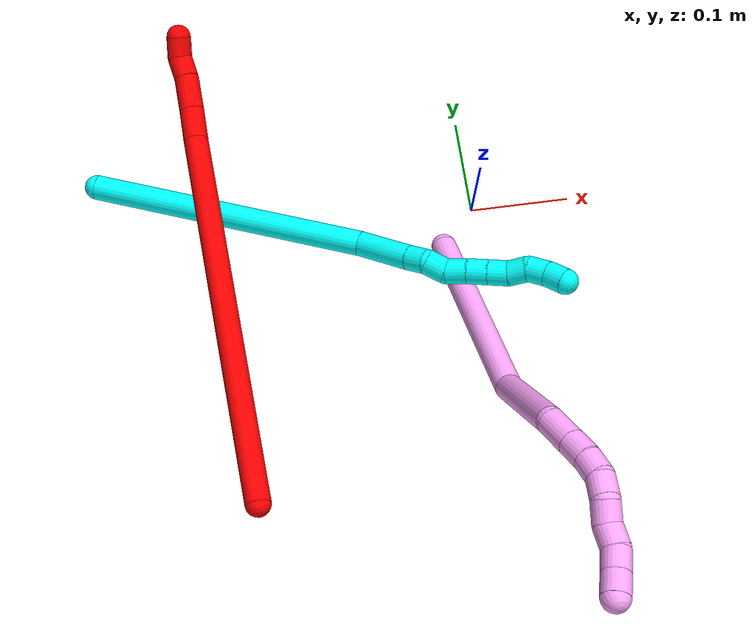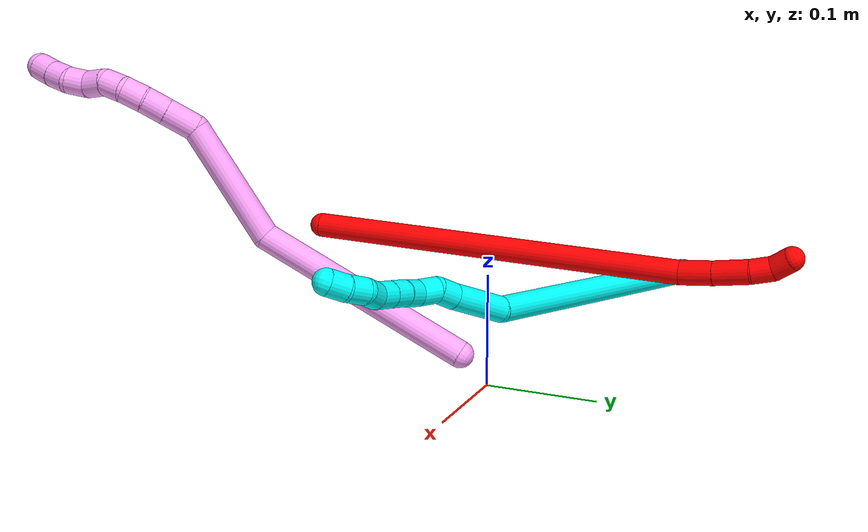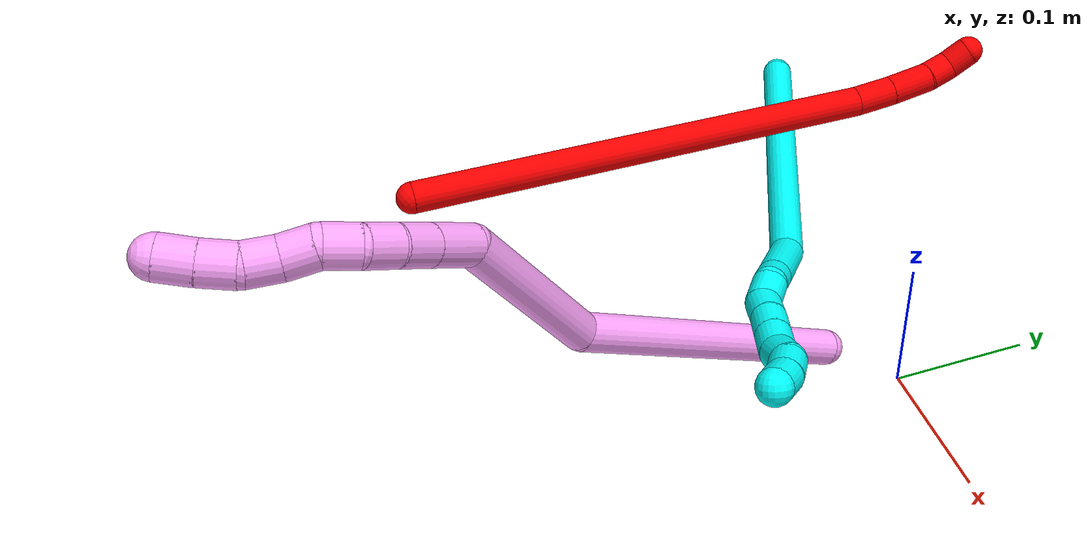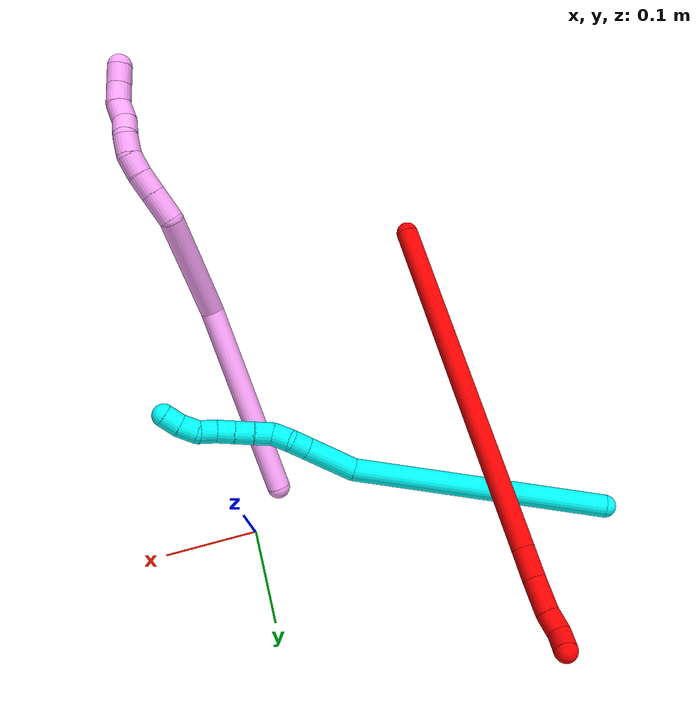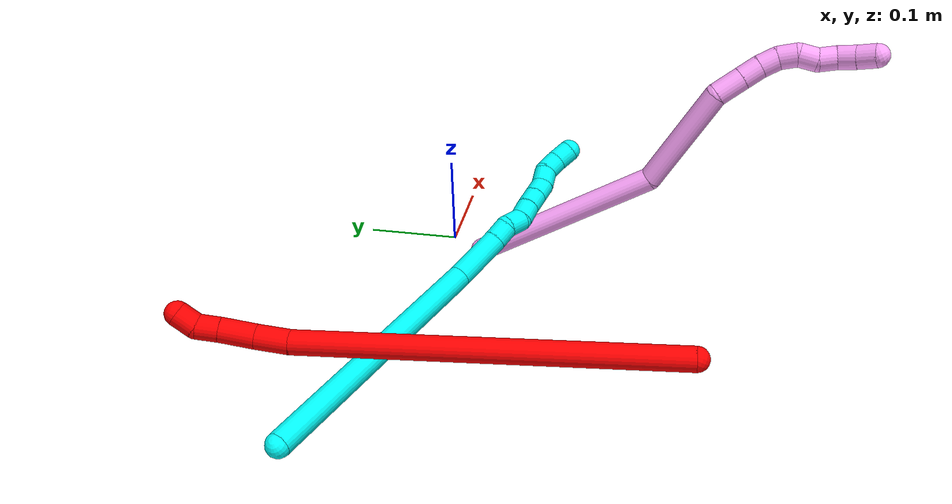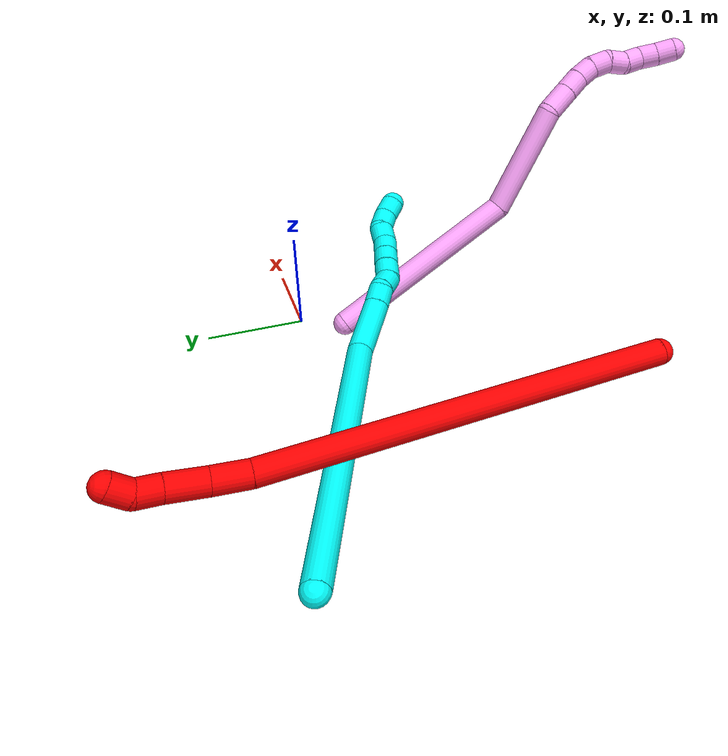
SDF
<sdf version="1.7">
 <world name="default">
  <model name="2">
   <static>0</static>
   <link name="2">
    <collision name="collision-cylinder-e_1_1_4">
     <pose>-0.051557 0.086936 0.164461 -0.486272 -0.270364 0.067448</pose>
     <geometry><cylinder><radius>0.0125</radius><length>0.386075</length></cylinder></geometry>
     <surface>
      <friction><ode><mu>1.16</mu><mu2>1.16</mu2><slip1>0</slip1><slip2>0</slip2></ode></friction>
      <contact><ode><kp>1e+06</kp><kd>1</kd><max_vel>0</max_vel><min_depth>0.001</min_depth></ode></contact>
     </surface>
    </collision>
    <visual name="visual-cylinder-e_1_1_4">
     <pose>-0.051557 0.086936 0.164461 -0.486272 -0.270364 0.067448</pose>
     <geometry><cylinder><radius>0.0125</radius><length>0.386075</length></cylinder></geometry>
     <material><ambient>1 0 0 1</ambient></material>
    </visual>
    <collision name="collision-cylinder-e_2_4_5">
     <pose>-0.105876 0.180507 0.344051 -0.413342 -0.165694 0.034816</pose>
     <geometry><cylinder><radius>0.0125</radius><length>0.033499</length></cylinder></geometry>
     <surface>
      <friction><ode><mu>1.16</mu><mu2>1.16</mu2><slip1>0</slip1><slip2>0</slip2></ode></friction>
      <contact><ode><kp>1e+06</kp><kd>1</kd><max_vel>0</max_vel><min_depth>0.001</min_depth></ode></contact>
     </surface>
    </collision>
    <visual name="visual-cylinder-e_2_4_5">
     <pose>-0.105876 0.180507 0.344051 -0.413342 -0.165694 0.034816</pose>
     <geometry><cylinder><radius>0.0125</radius><length>0.033499</length></cylinder></geometry>
     <material><ambient>1 0 0 1</ambient></material>
    </visual>
    <collision name="collision-cylinder-e_3_5_6">
     <pose>-0.111198 0.193486 0.375998 -0.360679 -0.141418 0.025825</pose>
     <geometry><cylinder><radius>0.0125</radius><length>0.036312</length></cylinder></geometry>
     <surface>
      <friction><ode><mu>1.16</mu><mu2>1.16</mu2><slip1>0</slip1><slip2>0</slip2></ode></friction>
      <contact><ode><kp>1e+06</kp><kd>1</kd><max_vel>0</max_vel><min_depth>0.001</min_depth></ode></contact>
     </surface>
    </collision>
    <visual name="visual-cylinder-e_3_5_6">
     <pose>-0.111198 0.193486 0.375998 -0.360679 -0.141418 0.025825</pose>
     <geometry><cylinder><radius>0.0125</radius><length>0.036312</length></cylinder></geometry>
     <material><ambient>1 0 0 1</ambient></material>
    </visual>
    <collision name="collision-cylinder-e_4_6_7">
     <pose>-0.116101 0.202076 0.403603 -0.205349 -0.209598 0.021675</pose>
     <geometry><cylinder><radius>0.0125</radius><length>0.02253</length></cylinder></geometry>
     <surface>
      <friction><ode><mu>1.16</mu><mu2>1.16</mu2><slip1>0</slip1><slip2>0</slip2></ode></friction>
      <contact><ode><kp>1e+06</kp><kd>1</kd><max_vel>0</max_vel><min_depth>0.001</min_depth></ode></contact>
     </surface>
    </collision>
    <visual name="visual-cylinder-e_4_6_7">
     <pose>-0.116101 0.202076 0.403603 -0.205349 -0.209598 0.021675</pose>
     <geometry><cylinder><radius>0.0125</radius><length>0.02253</length></cylinder></geometry>
     <material><ambient>1 0 0 1</ambient></material>
    </visual>
    <collision name="collision-cylinder-e_5_7_2">
     <pose>-0.115747 0.205373 0.424787 -0.100648 0.252633 -0.012792</pose>
     <geometry><cylinder><radius>0.0125</radius><length>0.021584</length></cylinder></geometry>
     <surface>
      <friction><ode><mu>1.16</mu><mu2>1.16</mu2><slip1>0</slip1><slip2>0</slip2></ode></friction>
      <contact><ode><kp>1e+06</kp><kd>1</kd><max_vel>0</max_vel><min_depth>0.001</min_depth></ode></contact>
     </surface>
    </collision>
    <visual name="visual-cylinder-e_5_7_2">
     <pose>-0.115747 0.205373 0.424787 -0.100648 0.252633 -0.012792</pose>
     <geometry><cylinder><radius>0.0125</radius><length>0.021584</length></cylinder></geometry>
     <material><ambient>1 0 0 1</ambient></material>
    </visual>
    <collision name="collision-sphere-2">
     <pose>-0.11305 0.206423 0.435184 0 -0 0</pose>
     <geometry><sphere><radius>0.0125</radius></sphere></geometry>
     <surface>
      <friction><ode><mu>1.16</mu><mu2>1.16</mu2><slip1>0</slip1><slip2>0</slip2></ode></friction>
      <contact><ode><kp>1e+06</kp><kd>1</kd><max_vel>0</max_vel><min_depth>0.001</min_depth></ode></contact>
     </surface>
    </collision>
    <visual name="visual-sphere-2">
     <pose>-0.11305 0.206423 0.435184 0 -0 0</pose>
     <geometry><sphere><radius>0.0125</radius></sphere></geometry>
     <material><ambient>1 0 0 1</ambient></material>
    </visual>
    <collision name="collision-sphere-7">
     <pose>-0.118445 0.204323 0.414391 0 -0 0</pose>
     <geometry><sphere><radius>0.0125</radius></sphere></geometry>
     <surface>
      <friction><ode><mu>1.16</mu><mu2>1.16</mu2><slip1>0</slip1><slip2>0</slip2></ode></friction>
      <contact><ode><kp>1e+06</kp><kd>1</kd><max_vel>0</max_vel><min_depth>0.001</min_depth></ode></contact>
     </surface>
    </collision>
    <visual name="visual-sphere-7">
     <pose>-0.118445 0.204323 0.414391 0 -0 0</pose>
     <geometry><sphere><radius>0.0125</radius></sphere></geometry>
     <material><ambient>1 0 0 1</ambient></material>
    </visual>
    <collision name="collision-sphere-6">
     <pose>-0.113757 0.199829 0.392816 0 -0 0</pose>
     <geometry><sphere><radius>0.0125</radius></sphere></geometry>
     <surface>
      <friction><ode><mu>1.16</mu><mu2>1.16</mu2><slip1>0</slip1><slip2>0</slip2></ode></friction>
      <contact><ode><kp>1e+06</kp><kd>1</kd><max_vel>0</max_vel><min_depth>0.001</min_depth></ode></contact>
     </surface>
    </collision>
    <visual name="visual-sphere-6">
     <pose>-0.113757 0.199829 0.392816 0 -0 0</pose>
     <geometry><sphere><radius>0.0125</radius></sphere></geometry>
     <material><ambient>1 0 0 1</ambient></material>
    </visual>
    <collision name="collision-sphere-5">
     <pose>-0.108639 0.187143 0.35918 0 -0 0</pose>
     <geometry><sphere><radius>0.0125</radius></sphere></geometry>
     <surface>
      <friction><ode><mu>1.16</mu><mu2>1.16</mu2><slip1>0</slip1><slip2>0</slip2></ode></friction>
      <contact><ode><kp>1e+06</kp><kd>1</kd><max_vel>0</max_vel><min_depth>0.001</min_depth></ode></contact>
     </surface>
    </collision>
    <visual name="visual-sphere-5">
     <pose>-0.108639 0.187143 0.35918 0 -0 0</pose>
     <geometry><sphere><radius>0.0125</radius></sphere></geometry>
     <material><ambient>1 0 0 1</ambient></material>
    </visual>
    <collision name="collision-sphere-1">
     <geometry><sphere><radius>0.0125</radius></sphere></geometry>
     <surface>
      <friction><ode><mu>1.16</mu><mu2>1.16</mu2><slip1>0</slip1><slip2>0</slip2></ode></friction>
      <contact><ode><kp>1e+06</kp><kd>1</kd><max_vel>0</max_vel><min_depth>0.001</min_depth></ode></contact>
     </surface>
    </collision>
    <visual name="visual-sphere-1">
     <geometry><sphere><radius>0.0125</radius></sphere></geometry>
     <material><ambient>1 0 0 1</ambient></material>
    </visual>
    <collision name="collision-sphere-4">
     <pose>-0.103114 0.173871 0.328923 0 -0 0</pose>
     <geometry><sphere><radius>0.0125</radius></sphere></geometry>
     <surface>
      <friction><ode><mu>1.16</mu><mu2>1.16</mu2><slip1>0</slip1><slip2>0</slip2></ode></friction>
      <contact><ode><kp>1e+06</kp><kd>1</kd><max_vel>0</max_vel><min_depth>0.001</min_depth></ode></contact>
     </surface>
    </collision>
    <visual name="visual-sphere-4">
     <pose>-0.103114 0.173871 0.328923 0 -0 0</pose>
     <geometry><sphere><radius>0.0125</radius></sphere></geometry>
     <material><ambient>1 0 0 1</ambient></material>
    </visual>
    <inertial>
     <pose>-0.065207 0.111244 0.21387 0 -0 0</pose>
     <mass>0.5</mass>
     <inertia>
      <ixx>0.004942</ixx>
      <ixy>0</ixy>
      <ixz>0</ixz>
      <iyy>0.004625</iyy>
      <iyz>0</iyz>
      <izz>-0.00085</izz>
     </inertia>
    </inertial>
   </link>
   <pose>-0.252344 -0.288522 0.05514 -0.892855 -0.711165 -0.275435</pose>
  </model>
  <model name="3">
   <static>0</static>
   <link name="3">
    <collision name="collision-cylinder-e_1_1_4">
     <pose>0.118021 -0.041114 0.063446 0.574982 1.00107 0.320697</pose>
     <geometry><cylinder><radius>0.0125</radius><length>0.280319</length></cylinder></geometry>
     <surface>
      <friction><ode><mu>1.16</mu><mu2>1.16</mu2><slip1>0</slip1><slip2>0</slip2></ode></friction>
      <contact><ode><kp>1e+06</kp><kd>1</kd><max_vel>0</max_vel><min_depth>0.001</min_depth></ode></contact>
     </surface>
    </collision>
    <visual name="visual-cylinder-e_1_1_4">
     <pose>0.118021 -0.041114 0.063446 0.574982 1.00107 0.320697</pose>
     <geometry><cylinder><radius>0.0125</radius><length>0.280319</length></cylinder></geometry>
     <material><ambient>0.003922 1 0.996078 1</ambient></material>
    </visual>
    <collision name="collision-cylinder-e_2_4_5">
     <pose>0.26429 -0.086446 0.130622 0.846678 1.37404 0.708113</pose>
     <geometry><cylinder><radius>0.0125</radius><length>0.057608</length></cylinder></geometry>
     <surface>
      <friction><ode><mu>1.16</mu><mu2>1.16</mu2><slip1>0</slip1><slip2>0</slip2></ode></friction>
      <contact><ode><kp>1e+06</kp><kd>1</kd><max_vel>0</max_vel><min_depth>0.001</min_depth></ode></contact>
     </surface>
    </collision>
    <visual name="visual-cylinder-e_2_4_5">
     <pose>0.26429 -0.086446 0.130622 0.846678 1.37404 0.708113</pose>
     <geometry><cylinder><radius>0.0125</radius><length>0.057608</length></cylinder></geometry>
     <material><ambient>0.003922 1 0.996078 1</ambient></material>
    </visual>
    <collision name="collision-cylinder-e_3_5_6">
     <pose>0.302381 -0.092434 0.134879 1.28163 1.38535 1.10841</pose>
     <geometry><cylinder><radius>0.0125</radius><length>0.020029</length></cylinder></geometry>
     <surface>
      <friction><ode><mu>1.16</mu><mu2>1.16</mu2><slip1>0</slip1><slip2>0</slip2></ode></friction>
      <contact><ode><kp>1e+06</kp><kd>1</kd><max_vel>0</max_vel><min_depth>0.001</min_depth></ode></contact>
     </surface>
    </collision>
    <visual name="visual-cylinder-e_3_5_6">
     <pose>0.302381 -0.092434 0.134879 1.28163 1.38535 1.10841</pose>
     <geometry><cylinder><radius>0.0125</radius><length>0.020029</length></cylinder></geometry>
     <material><ambient>0.003922 1 0.996078 1</ambient></material>
    </visual>
    <collision name="collision-cylinder-e_4_6_7">
     <pose>0.321502 -0.094699 0.140538 0.096225 1.06351 0.056636</pose>
     <geometry><cylinder><radius>0.0125</radius><length>0.021229</length></cylinder></geometry>
     <surface>
      <friction><ode><mu>1.16</mu><mu2>1.16</mu2><slip1>0</slip1><slip2>0</slip2></ode></friction>
      <contact><ode><kp>1e+06</kp><kd>1</kd><max_vel>0</max_vel><min_depth>0.001</min_depth></ode></contact>
     </surface>
    </collision>
    <visual name="visual-cylinder-e_4_6_7">
     <pose>0.321502 -0.094699 0.140538 0.096225 1.06351 0.056636</pose>
     <geometry><cylinder><radius>0.0125</radius><length>0.021229</length></cylinder></geometry>
     <material><ambient>0.003922 1 0.996078 1</ambient></material>
    </visual>
    <collision name="collision-cylinder-e_5_7_8">
     <pose>0.339341 -0.100026 0.14869 1.01225 0.983626 0.577291</pose>
     <geometry><cylinder><radius>0.0125</radius><length>0.020567</length></cylinder></geometry>
     <surface>
      <friction><ode><mu>1.16</mu><mu2>1.16</mu2><slip1>0</slip1><slip2>0</slip2></ode></friction>
      <contact><ode><kp>1e+06</kp><kd>1</kd><max_vel>0</max_vel><min_depth>0.001</min_depth></ode></contact>
     </surface>
    </collision>
    <visual name="visual-cylinder-e_5_7_8">
     <pose>0.339341 -0.100026 0.14869 1.01225 0.983626 0.577291</pose>
     <geometry><cylinder><radius>0.0125</radius><length>0.020567</length></cylinder></geometry>
     <material><ambient>0.003922 1 0.996078 1</ambient></material>
    </visual>
    <collision name="collision-cylinder-e_6_8_9">
     <pose>0.356292 -0.109171 0.155315 0.874552 0.980395 0.488931</pose>
     <geometry><cylinder><radius>0.0125</radius><length>0.020198</length></cylinder></geometry>
     <surface>
      <friction><ode><mu>1.16</mu><mu2>1.16</mu2><slip1>0</slip1><slip2>0</slip2></ode></friction>
      <contact><ode><kp>1e+06</kp><kd>1</kd><max_vel>0</max_vel><min_depth>0.001</min_depth></ode></contact>
     </surface>
    </collision>
    <visual name="visual-cylinder-e_6_8_9">
     <pose>0.356292 -0.109171 0.155315 0.874552 0.980395 0.488931</pose>
     <geometry><cylinder><radius>0.0125</radius><length>0.020198</length></cylinder></geometry>
     <material><ambient>0.003922 1 0.996078 1</ambient></material>
    </visual>
    <collision name="collision-cylinder-e_7_9_10">
     <pose>0.373019 -0.117753 0.162473 0.876744 0.983297 0.491919</pose>
     <geometry><cylinder><radius>0.0125</radius><length>0.020034</length></cylinder></geometry>
     <surface>
      <friction><ode><mu>1.16</mu><mu2>1.16</mu2><slip1>0</slip1><slip2>0</slip2></ode></friction>
      <contact><ode><kp>1e+06</kp><kd>1</kd><max_vel>0</max_vel><min_depth>0.001</min_depth></ode></contact>
     </surface>
    </collision>
    <visual name="visual-cylinder-e_7_9_10">
     <pose>0.373019 -0.117753 0.162473 0.876744 0.983297 0.491919</pose>
     <geometry><cylinder><radius>0.0125</radius><length>0.020034</length></cylinder></geometry>
     <material><ambient>0.003922 1 0.996078 1</ambient></material>
    </visual>
    <collision name="collision-cylinder-e_8_10_11">
     <pose>0.389334 -0.128029 0.166641 1.46855 0.922746 0.843642</pose>
     <geometry><cylinder><radius>0.0125</radius><length>0.020012</length></cylinder></geometry>
     <surface>
      <friction><ode><mu>1.16</mu><mu2>1.16</mu2><slip1>0</slip1><slip2>0</slip2></ode></friction>
      <contact><ode><kp>1e+06</kp><kd>1</kd><max_vel>0</max_vel><min_depth>0.001</min_depth></ode></contact>
     </surface>
    </collision>
    <visual name="visual-cylinder-e_8_10_11">
     <pose>0.389334 -0.128029 0.166641 1.46855 0.922746 0.843642</pose>
     <geometry><cylinder><radius>0.0125</radius><length>0.020012</length></cylinder></geometry>
     <material><ambient>0.003922 1 0.996078 1</ambient></material>
    </visual>
    <collision name="collision-cylinder-e_9_11_12">
     <pose>0.406888 -0.135897 0.169461 0.700994 1.27828 0.530609</pose>
     <geometry><cylinder><radius>0.0125</radius><length>0.020002</length></cylinder></geometry>
     <surface>
      <friction><ode><mu>1.16</mu><mu2>1.16</mu2><slip1>0</slip1><slip2>0</slip2></ode></friction>
      <contact><ode><kp>1e+06</kp><kd>1</kd><max_vel>0</max_vel><min_depth>0.001</min_depth></ode></contact>
     </surface>
    </collision>
    <visual name="visual-cylinder-e_9_11_12">
     <pose>0.406888 -0.135897 0.169461 0.700994 1.27828 0.530609</pose>
     <geometry><cylinder><radius>0.0125</radius><length>0.020002</length></cylinder></geometry>
     <material><ambient>0.003922 1 0.996078 1</ambient></material>
    </visual>
    <collision name="collision-cylinder-e_10_12_2">
     <pose>0.426429 -0.137824 0.172507 0.079228 1.48622 0.072802</pose>
     <geometry><cylinder><radius>0.0125</radius><length>0.02</length></cylinder></geometry>
     <surface>
      <friction><ode><mu>1.16</mu><mu2>1.16</mu2><slip1>0</slip1><slip2>0</slip2></ode></friction>
      <contact><ode><kp>1e+06</kp><kd>1</kd><max_vel>0</max_vel><min_depth>0.001</min_depth></ode></contact>
     </surface>
    </collision>
    <visual name="visual-cylinder-e_10_12_2">
     <pose>0.426429 -0.137824 0.172507 0.079228 1.48622 0.072802</pose>
     <geometry><cylinder><radius>0.0125</radius><length>0.02</length></cylinder></geometry>
     <material><ambient>0.003922 1 0.996078 1</ambient></material>
    </visual>
    <collision name="collision-sphere-2">
     <pose>0.436393 -0.137891 0.173349 0 -0 0</pose>
     <geometry><sphere><radius>0.0125</radius></sphere></geometry>
     <surface>
      <friction><ode><mu>1.16</mu><mu2>1.16</mu2><slip1>0</slip1><slip2>0</slip2></ode></friction>
      <contact><ode><kp>1e+06</kp><kd>1</kd><max_vel>0</max_vel><min_depth>0.001</min_depth></ode></contact>
     </surface>
    </collision>
    <visual name="visual-sphere-2">
     <pose>0.436393 -0.137891 0.173349 0 -0 0</pose>
     <geometry><sphere><radius>0.0125</radius></sphere></geometry>
     <material><ambient>0.003922 1 0.996078 1</ambient></material>
    </visual>
    <collision name="collision-sphere-12">
     <pose>0.416464 -0.137757 0.171665 0 -0 0</pose>
     <geometry><sphere><radius>0.0125</radius></sphere></geometry>
     <surface>
      <friction><ode><mu>1.16</mu><mu2>1.16</mu2><slip1>0</slip1><slip2>0</slip2></ode></friction>
      <contact><ode><kp>1e+06</kp><kd>1</kd><max_vel>0</max_vel><min_depth>0.001</min_depth></ode></contact>
     </surface>
    </collision>
    <visual name="visual-sphere-12">
     <pose>0.416464 -0.137757 0.171665 0 -0 0</pose>
     <geometry><sphere><radius>0.0125</radius></sphere></geometry>
     <material><ambient>0.003922 1 0.996078 1</ambient></material>
    </visual>
    <collision name="collision-sphere-11">
     <pose>0.397311 -0.134037 0.167257 0 -0 0</pose>
     <geometry><sphere><radius>0.0125</radius></sphere></geometry>
     <surface>
      <friction><ode><mu>1.16</mu><mu2>1.16</mu2><slip1>0</slip1><slip2>0</slip2></ode></friction>
      <contact><ode><kp>1e+06</kp><kd>1</kd><max_vel>0</max_vel><min_depth>0.001</min_depth></ode></contact>
     </surface>
    </collision>
    <visual name="visual-sphere-11">
     <pose>0.397311 -0.134037 0.167257 0 -0 0</pose>
     <geometry><sphere><radius>0.0125</radius></sphere></geometry>
     <material><ambient>0.003922 1 0.996078 1</ambient></material>
    </visual>
    <collision name="collision-sphere-10">
     <pose>0.381356 -0.12202 0.166024 0 -0 0</pose>
     <geometry><sphere><radius>0.0125</radius></sphere></geometry>
     <surface>
      <friction><ode><mu>1.16</mu><mu2>1.16</mu2><slip1>0</slip1><slip2>0</slip2></ode></friction>
      <contact><ode><kp>1e+06</kp><kd>1</kd><max_vel>0</max_vel><min_depth>0.001</min_depth></ode></contact>
     </surface>
    </collision>
    <visual name="visual-sphere-10">
     <pose>0.381356 -0.12202 0.166024 0 -0 0</pose>
     <geometry><sphere><radius>0.0125</radius></sphere></geometry>
     <material><ambient>0.003922 1 0.996078 1</ambient></material>
    </visual>
    <collision name="collision-sphere-9">
     <pose>0.364681 -0.113485 0.158921 0 -0 0</pose>
     <geometry><sphere><radius>0.0125</radius></sphere></geometry>
     <surface>
      <friction><ode><mu>1.16</mu><mu2>1.16</mu2><slip1>0</slip1><slip2>0</slip2></ode></friction>
      <contact><ode><kp>1e+06</kp><kd>1</kd><max_vel>0</max_vel><min_depth>0.001</min_depth></ode></contact>
     </surface>
    </collision>
    <visual name="visual-sphere-9">
     <pose>0.364681 -0.113485 0.158921 0 -0 0</pose>
     <geometry><sphere><radius>0.0125</radius></sphere></geometry>
     <material><ambient>0.003922 1 0.996078 1</ambient></material>
    </visual>
    <collision name="collision-sphere-4">
     <pose>0.236042 -0.082228 0.126892 0 -0 0</pose>
     <geometry><sphere><radius>0.0125</radius></sphere></geometry>
     <surface>
      <friction><ode><mu>1.16</mu><mu2>1.16</mu2><slip1>0</slip1><slip2>0</slip2></ode></friction>
      <contact><ode><kp>1e+06</kp><kd>1</kd><max_vel>0</max_vel><min_depth>0.001</min_depth></ode></contact>
     </surface>
    </collision>
    <visual name="visual-sphere-4">
     <pose>0.236042 -0.082228 0.126892 0 -0 0</pose>
     <geometry><sphere><radius>0.0125</radius></sphere></geometry>
     <material><ambient>0.003922 1 0.996078 1</ambient></material>
    </visual>
    <collision name="collision-sphere-1">
     <geometry><sphere><radius>0.0125</radius></sphere></geometry>
     <surface>
      <friction><ode><mu>1.16</mu><mu2>1.16</mu2><slip1>0</slip1><slip2>0</slip2></ode></friction>
      <contact><ode><kp>1e+06</kp><kd>1</kd><max_vel>0</max_vel><min_depth>0.001</min_depth></ode></contact>
     </surface>
    </collision>
    <visual name="visual-sphere-1">
     <geometry><sphere><radius>0.0125</radius></sphere></geometry>
     <material><ambient>0.003922 1 0.996078 1</ambient></material>
    </visual>
    <collision name="collision-sphere-8">
     <pose>0.347902 -0.104857 0.151709 0 -0 0</pose>
     <geometry><sphere><radius>0.0125</radius></sphere></geometry>
     <surface>
      <friction><ode><mu>1.16</mu><mu2>1.16</mu2><slip1>0</slip1><slip2>0</slip2></ode></friction>
      <contact><ode><kp>1e+06</kp><kd>1</kd><max_vel>0</max_vel><min_depth>0.001</min_depth></ode></contact>
     </surface>
    </collision>
    <visual name="visual-sphere-8">
     <pose>0.347902 -0.104857 0.151709 0 -0 0</pose>
     <geometry><sphere><radius>0.0125</radius></sphere></geometry>
     <material><ambient>0.003922 1 0.996078 1</ambient></material>
    </visual>
    <collision name="collision-sphere-5">
     <pose>0.292538 -0.090664 0.134352 0 -0 0</pose>
     <geometry><sphere><radius>0.0125</radius></sphere></geometry>
     <surface>
      <friction><ode><mu>1.16</mu><mu2>1.16</mu2><slip1>0</slip1><slip2>0</slip2></ode></friction>
      <contact><ode><kp>1e+06</kp><kd>1</kd><max_vel>0</max_vel><min_depth>0.001</min_depth></ode></contact>
     </surface>
    </collision>
    <visual name="visual-sphere-5">
     <pose>0.292538 -0.090664 0.134352 0 -0 0</pose>
     <geometry><sphere><radius>0.0125</radius></sphere></geometry>
     <material><ambient>0.003922 1 0.996078 1</ambient></material>
    </visual>
    <collision name="collision-sphere-6">
     <pose>0.312224 -0.094204 0.135405 0 -0 0</pose>
     <geometry><sphere><radius>0.0125</radius></sphere></geometry>
     <surface>
      <friction><ode><mu>1.16</mu><mu2>1.16</mu2><slip1>0</slip1><slip2>0</slip2></ode></friction>
      <contact><ode><kp>1e+06</kp><kd>1</kd><max_vel>0</max_vel><min_depth>0.001</min_depth></ode></contact>
     </surface>
    </collision>
    <visual name="visual-sphere-6">
     <pose>0.312224 -0.094204 0.135405 0 -0 0</pose>
     <geometry><sphere><radius>0.0125</radius></sphere></geometry>
     <material><ambient>0.003922 1 0.996078 1</ambient></material>
    </visual>
    <collision name="collision-sphere-7">
     <pose>0.33078 -0.095195 0.145671 0 -0 0</pose>
     <geometry><sphere><radius>0.0125</radius></sphere></geometry>
     <surface>
      <friction><ode><mu>1.16</mu><mu2>1.16</mu2><slip1>0</slip1><slip2>0</slip2></ode></friction>
      <contact><ode><kp>1e+06</kp><kd>1</kd><max_vel>0</max_vel><min_depth>0.001</min_depth></ode></contact>
     </surface>
    </collision>
    <visual name="visual-sphere-7">
     <pose>0.33078 -0.095195 0.145671 0 -0 0</pose>
     <geometry><sphere><radius>0.0125</radius></sphere></geometry>
     <material><ambient>0.003922 1 0.996078 1</ambient></material>
    </visual>
    <inertial>
     <pose>0.214596 -0.07005 0.10124 0 -0 0</pose>
     <mass>0.5</mass>
     <inertia>
      <ixx>0.001305</ixx>
      <ixy>0</ixy>
      <ixz>0</ixz>
      <iyy>0.002074</iyy>
      <iyz>0</iyz>
      <izz>-0.001022</izz>
     </inertia>
    </inertial>
   </link>
   <pose>-0.379929 0.072092 0.012194 -2.89667 -0.482683 -0.795076</pose>
  </model>
  <model name="4">
   <static>0</static>
   <link name="4">
    <collision name="collision-cylinder-e_1_1_4">
     <pose>-0.004879 -0.00053 0.10431 0.005076 -0.046735 -0.000119</pose>
     <geometry><cylinder><radius>0.0125</radius><length>0.208851</length></cylinder></geometry>
     <surface>
      <friction><ode><mu>1.16</mu><mu2>1.16</mu2><slip1>0</slip1><slip2>0</slip2></ode></friction>
      <contact><ode><kp>1e+06</kp><kd>1</kd><max_vel>0</max_vel><min_depth>0.001</min_depth></ode></contact>
     </surface>
    </collision>
    <visual name="visual-cylinder-e_1_1_4">
     <pose>-0.004879 -0.00053 0.10431 0.005076 -0.046735 -0.000119</pose>
     <geometry><cylinder><radius>0.0125</radius><length>0.208851</length></cylinder></geometry>
     <material><ambient>1 0.65098 0.996078 1</ambient></material>
    </visual>
    <collision name="collision-cylinder-e_2_4_5">
     <pose>0.005888 -0.024063 0.259948 0.42134 0.271295 0.058356</pose>
     <geometry><cylinder><radius>0.0125</radius><length>0.116765</length></cylinder></geometry>
     <surface>
      <friction><ode><mu>1.16</mu><mu2>1.16</mu2><slip1>0</slip1><slip2>0</slip2></ode></friction>
      <contact><ode><kp>1e+06</kp><kd>1</kd><max_vel>0</max_vel><min_depth>0.001</min_depth></ode></contact>
     </surface>
    </collision>
    <visual name="visual-cylinder-e_2_4_5">
     <pose>0.005888 -0.024063 0.259948 0.42134 0.271295 0.058356</pose>
     <geometry><cylinder><radius>0.0125</radius><length>0.116765</length></cylinder></geometry>
     <material><ambient>1 0.65098 0.996078 1</ambient></material>
    </visual>
    <collision name="collision-cylinder-e_3_5_6">
     <pose>0.018671 -0.050518 0.326088 0.228895 -0.186053 -0.021448</pose>
     <geometry><cylinder><radius>0.0125</radius><length>0.030952</length></cylinder></geometry>
     <surface>
      <friction><ode><mu>1.16</mu><mu2>1.16</mu2><slip1>0</slip1><slip2>0</slip2></ode></friction>
      <contact><ode><kp>1e+06</kp><kd>1</kd><max_vel>0</max_vel><min_depth>0.001</min_depth></ode></contact>
     </surface>
    </collision>
    <visual name="visual-cylinder-e_3_5_6">
     <pose>0.018671 -0.050518 0.326088 0.228895 -0.186053 -0.021448</pose>
     <geometry><cylinder><radius>0.0125</radius><length>0.030952</length></cylinder></geometry>
     <material><ambient>1 0.65098 0.996078 1</ambient></material>
    </visual>
    <collision name="collision-cylinder-e_4_6_7">
     <pose>0.013728 -0.056425 0.351515 0.227389 -0.188677 -0.021608</pose>
     <geometry><cylinder><radius>0.0125</radius><length>0.022184</length></cylinder></geometry>
     <surface>
      <friction><ode><mu>1.16</mu><mu2>1.16</mu2><slip1>0</slip1><slip2>0</slip2></ode></friction>
      <contact><ode><kp>1e+06</kp><kd>1</kd><max_vel>0</max_vel><min_depth>0.001</min_depth></ode></contact>
     </surface>
    </collision>
    <visual name="visual-cylinder-e_4_6_7">
     <pose>0.013728 -0.056425 0.351515 0.227389 -0.188677 -0.021608</pose>
     <geometry><cylinder><radius>0.0125</radius><length>0.022184</length></cylinder></geometry>
     <material><ambient>1 0.65098 0.996078 1</ambient></material>
    </visual>
    <collision name="collision-cylinder-e_5_7_8">
     <pose>0.009864 -0.059716 0.372283 0.081973 -0.173306 -0.007125</pose>
     <geometry><cylinder><radius>0.0125</radius><length>0.020684</length></cylinder></geometry>
     <surface>
      <friction><ode><mu>1.16</mu><mu2>1.16</mu2><slip1>0</slip1><slip2>0</slip2></ode></friction>
      <contact><ode><kp>1e+06</kp><kd>1</kd><max_vel>0</max_vel><min_depth>0.001</min_depth></ode></contact>
     </surface>
    </collision>
    <visual name="visual-cylinder-e_5_7_8">
     <pose>0.009864 -0.059716 0.372283 0.081973 -0.173306 -0.007125</pose>
     <geometry><cylinder><radius>0.0125</radius><length>0.020684</length></cylinder></geometry>
     <material><ambient>1 0.65098 0.996078 1</ambient></material>
    </visual>
    <collision name="collision-cylinder-e_6_8_9">
     <pose>0.007295 -0.057907 0.392298 -0.261822 -0.076781 0.010114</pose>
     <geometry><cylinder><radius>0.0125</radius><length>0.020481</length></cylinder></geometry>
     <surface>
      <friction><ode><mu>1.16</mu><mu2>1.16</mu2><slip1>0</slip1><slip2>0</slip2></ode></friction>
      <contact><ode><kp>1e+06</kp><kd>1</kd><max_vel>0</max_vel><min_depth>0.001</min_depth></ode></contact>
     </surface>
    </collision>
    <visual name="visual-cylinder-e_6_8_9">
     <pose>0.007295 -0.057907 0.392298 -0.261822 -0.076781 0.010114</pose>
     <geometry><cylinder><radius>0.0125</radius><length>0.020481</length></cylinder></geometry>
     <material><ambient>1 0.65098 0.996078 1</ambient></material>
    </visual>
    <collision name="collision-cylinder-e_7_9_10">
     <pose>0.003469 -0.049479 0.409748 -0.651373 -0.308531 0.104933</pose>
     <geometry><cylinder><radius>0.0125</radius><length>0.020029</length></cylinder></geometry>
     <surface>
      <friction><ode><mu>1.16</mu><mu2>1.16</mu2><slip1>0</slip1><slip2>0</slip2></ode></friction>
      <contact><ode><kp>1e+06</kp><kd>1</kd><max_vel>0</max_vel><min_depth>0.001</min_depth></ode></contact>
     </surface>
    </collision>
    <visual name="visual-cylinder-e_7_9_10">
     <pose>0.003469 -0.049479 0.409748 -0.651373 -0.308531 0.104933</pose>
     <geometry><cylinder><radius>0.0125</radius><length>0.020029</length></cylinder></geometry>
     <material><ambient>1 0.65098 0.996078 1</ambient></material>
    </visual>
    <collision name="collision-cylinder-e_8_10_11">
     <pose>-0.002244 -0.041367 0.426691 -0.243865 -0.270376 0.033332</pose>
     <geometry><cylinder><radius>0.0125</radius><length>0.020007</length></cylinder></geometry>
     <surface>
      <friction><ode><mu>1.16</mu><mu2>1.16</mu2><slip1>0</slip1><slip2>0</slip2></ode></friction>
      <contact><ode><kp>1e+06</kp><kd>1</kd><max_vel>0</max_vel><min_depth>0.001</min_depth></ode></contact>
     </surface>
    </collision>
    <visual name="visual-cylinder-e_8_10_11">
     <pose>-0.002244 -0.041367 0.426691 -0.243865 -0.270376 0.033332</pose>
     <geometry><cylinder><radius>0.0125</radius><length>0.020007</length></cylinder></geometry>
     <material><ambient>1 0.65098 0.996078 1</ambient></material>
    </visual>
    <collision name="collision-cylinder-e_9_11_12">
     <pose>-0.004559 -0.034786 0.445091 -0.43952 0.035747 -0.007986</pose>
     <geometry><cylinder><radius>0.0125</radius><length>0.020004</length></cylinder></geometry>
     <surface>
      <friction><ode><mu>1.16</mu><mu2>1.16</mu2><slip1>0</slip1><slip2>0</slip2></ode></friction>
      <contact><ode><kp>1e+06</kp><kd>1</kd><max_vel>0</max_vel><min_depth>0.001</min_depth></ode></contact>
     </surface>
    </collision>
    <visual name="visual-cylinder-e_9_11_12">
     <pose>-0.004559 -0.034786 0.445091 -0.43952 0.035747 -0.007986</pose>
     <geometry><cylinder><radius>0.0125</radius><length>0.020004</length></cylinder></geometry>
     <material><ambient>1 0.65098 0.996078 1</ambient></material>
    </visual>
    <collision name="collision-cylinder-e_10_12_2">
     <pose>-0.003207 -0.026696 0.463342 -0.394901 0.099339 -0.019889</pose>
     <geometry><cylinder><radius>0.0125</radius><length>0.020044</length></cylinder></geometry>
     <surface>
      <friction><ode><mu>1.16</mu><mu2>1.16</mu2><slip1>0</slip1><slip2>0</slip2></ode></friction>
      <contact><ode><kp>1e+06</kp><kd>1</kd><max_vel>0</max_vel><min_depth>0.001</min_depth></ode></contact>
     </surface>
    </collision>
    <visual name="visual-cylinder-e_10_12_2">
     <pose>-0.003207 -0.026696 0.463342 -0.394901 0.099339 -0.019889</pose>
     <geometry><cylinder><radius>0.0125</radius><length>0.020044</length></cylinder></geometry>
     <material><ambient>1 0.65098 0.996078 1</ambient></material>
    </visual>
    <collision name="collision-sphere-2">
     <pose>-0.002213 -0.02286 0.472546 0 -0 0</pose>
     <geometry><sphere><radius>0.0125</radius></sphere></geometry>
     <surface>
      <friction><ode><mu>1.16</mu><mu2>1.16</mu2><slip1>0</slip1><slip2>0</slip2></ode></friction>
      <contact><ode><kp>1e+06</kp><kd>1</kd><max_vel>0</max_vel><min_depth>0.001</min_depth></ode></contact>
     </surface>
    </collision>
    <visual name="visual-sphere-2">
     <pose>-0.002213 -0.02286 0.472546 0 -0 0</pose>
     <geometry><sphere><radius>0.0125</radius></sphere></geometry>
     <material><ambient>1 0.65098 0.996078 1</ambient></material>
    </visual>
    <collision name="collision-sphere-12">
     <pose>-0.004201 -0.030533 0.454137 0 -0 0</pose>
     <geometry><sphere><radius>0.0125</radius></sphere></geometry>
     <surface>
      <friction><ode><mu>1.16</mu><mu2>1.16</mu2><slip1>0</slip1><slip2>0</slip2></ode></friction>
      <contact><ode><kp>1e+06</kp><kd>1</kd><max_vel>0</max_vel><min_depth>0.001</min_depth></ode></contact>
     </surface>
    </collision>
    <visual name="visual-sphere-12">
     <pose>-0.004201 -0.030533 0.454137 0 -0 0</pose>
     <geometry><sphere><radius>0.0125</radius></sphere></geometry>
     <material><ambient>1 0.65098 0.996078 1</ambient></material>
    </visual>
    <collision name="collision-sphere-11">
     <pose>-0.004916 -0.039039 0.436046 0 -0 0</pose>
     <geometry><sphere><radius>0.0125</radius></sphere></geometry>
     <surface>
      <friction><ode><mu>1.16</mu><mu2>1.16</mu2><slip1>0</slip1><slip2>0</slip2></ode></friction>
      <contact><ode><kp>1e+06</kp><kd>1</kd><max_vel>0</max_vel><min_depth>0.001</min_depth></ode></contact>
     </surface>
    </collision>
    <visual name="visual-sphere-11">
     <pose>-0.004916 -0.039039 0.436046 0 -0 0</pose>
     <geometry><sphere><radius>0.0125</radius></sphere></geometry>
     <material><ambient>1 0.65098 0.996078 1</ambient></material>
    </visual>
    <collision name="collision-sphere-10">
     <pose>0.000428 -0.043695 0.417336 0 -0 0</pose>
     <geometry><sphere><radius>0.0125</radius></sphere></geometry>
     <surface>
      <friction><ode><mu>1.16</mu><mu2>1.16</mu2><slip1>0</slip1><slip2>0</slip2></ode></friction>
      <contact><ode><kp>1e+06</kp><kd>1</kd><max_vel>0</max_vel><min_depth>0.001</min_depth></ode></contact>
     </surface>
    </collision>
    <visual name="visual-sphere-10">
     <pose>0.000428 -0.043695 0.417336 0 -0 0</pose>
     <geometry><sphere><radius>0.0125</radius></sphere></geometry>
     <material><ambient>1 0.65098 0.996078 1</ambient></material>
    </visual>
    <collision name="collision-sphere-9">
     <pose>0.006509 -0.055264 0.40216 0 -0 0</pose>
     <geometry><sphere><radius>0.0125</radius></sphere></geometry>
     <surface>
      <friction><ode><mu>1.16</mu><mu2>1.16</mu2><slip1>0</slip1><slip2>0</slip2></ode></friction>
      <contact><ode><kp>1e+06</kp><kd>1</kd><max_vel>0</max_vel><min_depth>0.001</min_depth></ode></contact>
     </surface>
    </collision>
    <visual name="visual-sphere-9">
     <pose>0.006509 -0.055264 0.40216 0 -0 0</pose>
     <geometry><sphere><radius>0.0125</radius></sphere></geometry>
     <material><ambient>1 0.65098 0.996078 1</ambient></material>
    </visual>
    <collision name="collision-sphere-4">
     <pose>-0.009757 -0.001059 0.20862 0 -0 0</pose>
     <geometry><sphere><radius>0.0125</radius></sphere></geometry>
     <surface>
      <friction><ode><mu>1.16</mu><mu2>1.16</mu2><slip1>0</slip1><slip2>0</slip2></ode></friction>
      <contact><ode><kp>1e+06</kp><kd>1</kd><max_vel>0</max_vel><min_depth>0.001</min_depth></ode></contact>
     </surface>
    </collision>
    <visual name="visual-sphere-4">
     <pose>-0.009757 -0.001059 0.20862 0 -0 0</pose>
     <geometry><sphere><radius>0.0125</radius></sphere></geometry>
     <material><ambient>1 0.65098 0.996078 1</ambient></material>
    </visual>
    <collision name="collision-sphere-1">
     <geometry><sphere><radius>0.0125</radius></sphere></geometry>
     <surface>
      <friction><ode><mu>1.16</mu><mu2>1.16</mu2><slip1>0</slip1><slip2>0</slip2></ode></friction>
      <contact><ode><kp>1e+06</kp><kd>1</kd><max_vel>0</max_vel><min_depth>0.001</min_depth></ode></contact>
     </surface>
    </collision>
    <visual name="visual-sphere-1">
     <geometry><sphere><radius>0.0125</radius></sphere></geometry>
     <material><ambient>1 0.65098 0.996078 1</ambient></material>
    </visual>
    <collision name="collision-sphere-8">
     <pose>0.00808 -0.06055 0.382435 0 -0 0</pose>
     <geometry><sphere><radius>0.0125</radius></sphere></geometry>
     <surface>
      <friction><ode><mu>1.16</mu><mu2>1.16</mu2><slip1>0</slip1><slip2>0</slip2></ode></friction>
      <contact><ode><kp>1e+06</kp><kd>1</kd><max_vel>0</max_vel><min_depth>0.001</min_depth></ode></contact>
     </surface>
    </collision>
    <visual name="visual-sphere-8">
     <pose>0.00808 -0.06055 0.382435 0 -0 0</pose>
     <geometry><sphere><radius>0.0125</radius></sphere></geometry>
     <material><ambient>1 0.65098 0.996078 1</ambient></material>
    </visual>
    <collision name="collision-sphere-5">
     <pose>0.021534 -0.047067 0.311276 0 -0 0</pose>
     <geometry><sphere><radius>0.0125</radius></sphere></geometry>
     <surface>
      <friction><ode><mu>1.16</mu><mu2>1.16</mu2><slip1>0</slip1><slip2>0</slip2></ode></friction>
      <contact><ode><kp>1e+06</kp><kd>1</kd><max_vel>0</max_vel><min_depth>0.001</min_depth></ode></contact>
     </surface>
    </collision>
    <visual name="visual-sphere-5">
     <pose>0.021534 -0.047067 0.311276 0 -0 0</pose>
     <geometry><sphere><radius>0.0125</radius></sphere></geometry>
     <material><ambient>1 0.65098 0.996078 1</ambient></material>
    </visual>
    <collision name="collision-sphere-6">
     <pose>0.015808 -0.053969 0.340901 0 -0 0</pose>
     <geometry><sphere><radius>0.0125</radius></sphere></geometry>
     <surface>
      <friction><ode><mu>1.16</mu><mu2>1.16</mu2><slip1>0</slip1><slip2>0</slip2></ode></friction>
      <contact><ode><kp>1e+06</kp><kd>1</kd><max_vel>0</max_vel><min_depth>0.001</min_depth></ode></contact>
     </surface>
    </collision>
    <visual name="visual-sphere-6">
     <pose>0.015808 -0.053969 0.340901 0 -0 0</pose>
     <geometry><sphere><radius>0.0125</radius></sphere></geometry>
     <material><ambient>1 0.65098 0.996078 1</ambient></material>
    </visual>
    <collision name="collision-sphere-7">
     <pose>0.011647 -0.058882 0.36213 0 -0 0</pose>
     <geometry><sphere><radius>0.0125</radius></sphere></geometry>
     <surface>
      <friction><ode><mu>1.16</mu><mu2>1.16</mu2><slip1>0</slip1><slip2>0</slip2></ode></friction>
      <contact><ode><kp>1e+06</kp><kd>1</kd><max_vel>0</max_vel><min_depth>0.001</min_depth></ode></contact>
     </surface>
    </collision>
    <visual name="visual-sphere-7">
     <pose>0.011647 -0.058882 0.36213 0 -0 0</pose>
     <geometry><sphere><radius>0.0125</radius></sphere></geometry>
     <material><ambient>1 0.65098 0.996078 1</ambient></material>
    </visual>
    <inertial>
     <pose>0.001547 -0.022413 0.241396 0 -0 0</pose>
     <mass>0.5</mass>
     <inertia><ixx>0.00092</ixx><ixy>0</ixy><ixz>0</ixz><iyy>0.000913</iyy><iyz>0</iyz><izz>9.5e-05</izz></inertia>
    </inertial>
   </link>
   <pose>-0.036497 -0.040355 0.011496 -0.926797 -0.62923 2.80727</pose>
  </model>
 </world>
</sdf>
